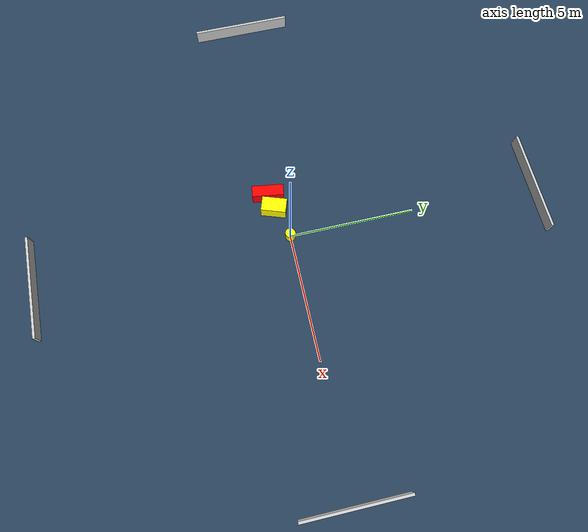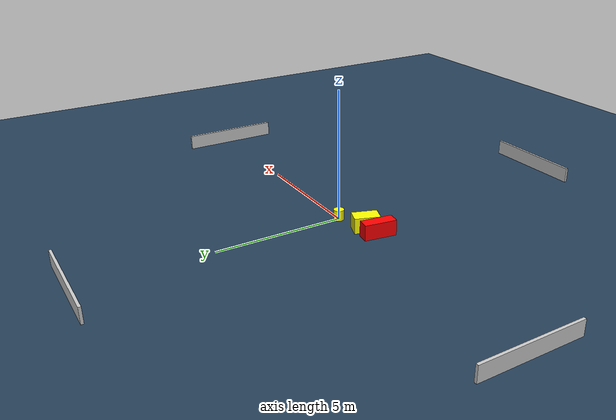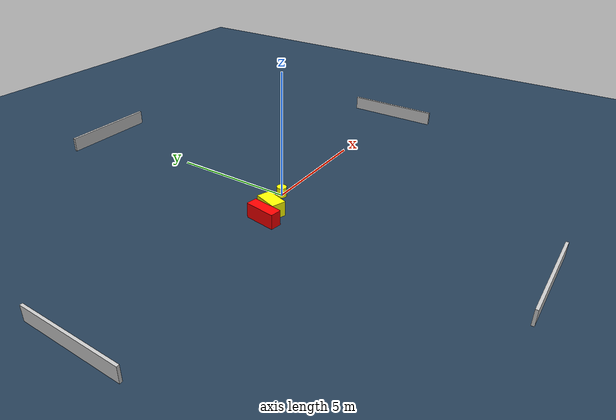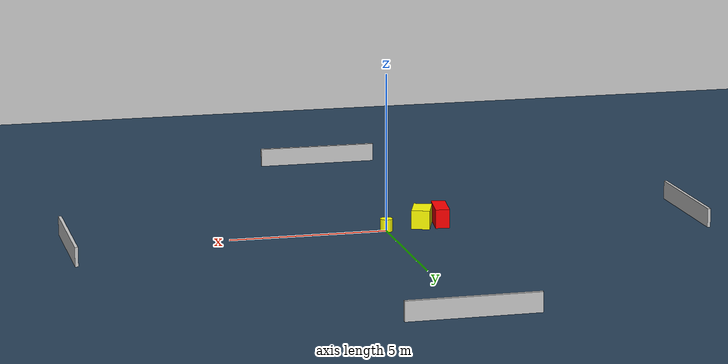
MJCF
<?xml version="1.0" ?>
<mujoco model="generated_environment">
  <option timestep="0.01" integrator="RK4" cone="elliptic"/>
  <default>
    <geom density="1"/>
  </default>
  <asset>
    <texture builtin="gradient" height="3072" name="skybox" rgb1="0.3 0.5 0.7" rgb2="0 0 0" type="skybox" width="512"/>
    <texture builtin="checker" height="300" name="groundplane" rgb1="0.2 0.3 0.4" rgb2="0.1 0.2 0.3" type="2d" width="300"/>
    <material name="groundplane" reflectance="0.2" texrepeat="5 5" texture="groundplane"/>
  </asset>
  <worldbody>
    <light dir="0 0 -1" directional="true" pos="0 0 1.5"/>
    <geom condim="3" friction="0.5 0.005 0.001" material="groundplane" name="floor" pos="0 0 0" size="0 0 0.05" type="plane"/>
    <body name="walls">
      <geom name="wall_1" condim="4" pos="-10.0 0.0 0.3" rgba="0.800000011920929 0.800000011920929 0.800000011920929 1.0" size="0.05 2.0 0.3" type="box"/>
      <geom name="wall_2" condim="4" pos="10.0 0.0 0.3" rgba="0.800000011920929 0.800000011920929 0.800000011920929 1.0" size="0.05 2.0 0.3" type="box"/>
      <geom name="wall_3" condim="4" pos="0.0 -10.0 0.3" rgba="0.800000011920929 0.800000011920929 0.800000011920929 1.0" size="2.0 0.05 0.3" type="box"/>
      <geom name="wall_4" condim="4" pos="0.0 10.0 0.3" rgba="0.800000011920929 0.800000011920929 0.800000011920929 1.0" size="2.0 0.05 0.3" type="box"/>
    </body>
    <body name="robot">
      <joint name="joint_x" type="slide" pos="0 0 0" axis="1 0 0"/>
      <joint name="joint_y" type="slide" pos="0 0 0" axis="0 1 0"/>
      <geom name="robot" type="cylinder" pos="0.0 0.0 0.2" size="0.2 0.2 0.0" mass="5.0" friction="1.0 0.005 0.0001" condim="4" rgba="1.0 1.0 0.0 1.0"/>
    </body>
    <body name="obstacle_1_movable">
      <geom name="obstacle_1_movable" condim="4" pos="-1.2473765443114972 -0.38629295501375555 0.3" euler="0 0 251.03317445130034" friction="0.0 0.005 0.001" rgba="1.0 1.0 0.0 1.0" size="0.49050015979499273 0.29118858368973005 0.3" type="box" mass="0.1"/>
      <joint type="free"/>
    </body>
    <body name="obstacle_2_static">
      <geom name="obstacle_2_static" condim="4" pos="-1.887618313854559 -0.5035390749932125 0.3" euler="0 0 171.6422940762353" friction="0.0 0.005 0.001" rgba="1.0 0.0 0.0 1.0" size="0.22733146712380983 0.6231295551051006 0.3" type="box"/>
    </body>
  </worldbody>
  <actuator>
    <motor name="actuator_x" joint="joint_x" gear="1" ctrlrange="-1 1"/>
    <motor name="actuator_y" joint="joint_y" gear="1" ctrlrange="-1 1"/>
  </actuator>
</mujoco>
